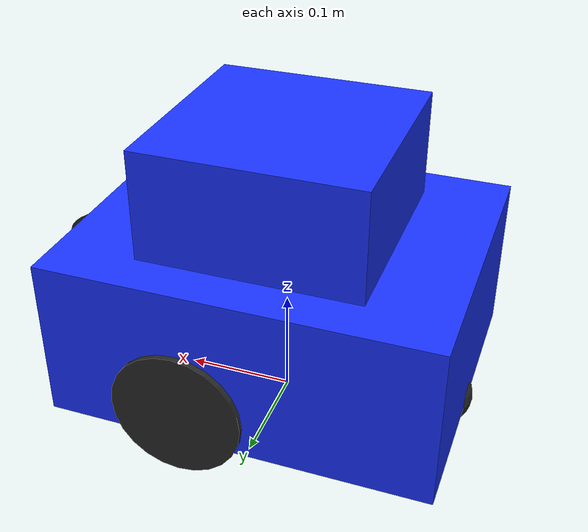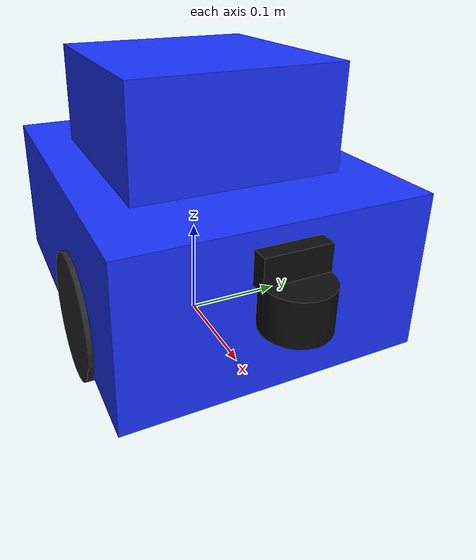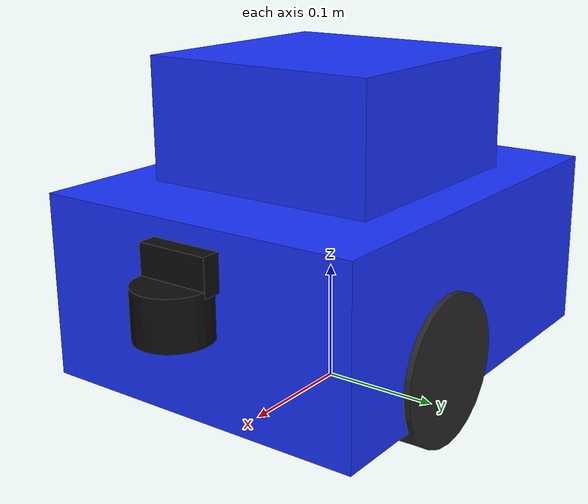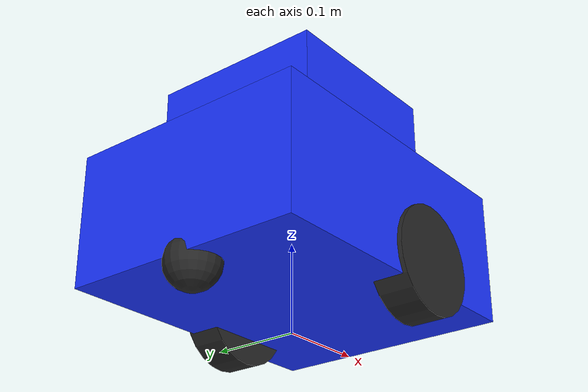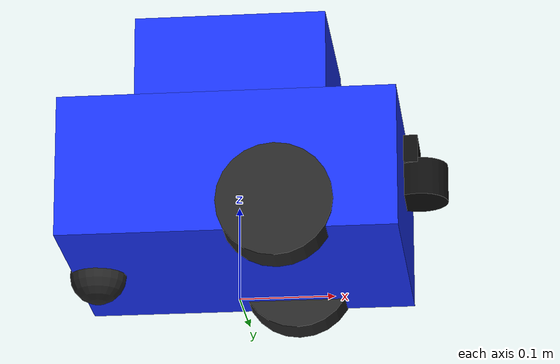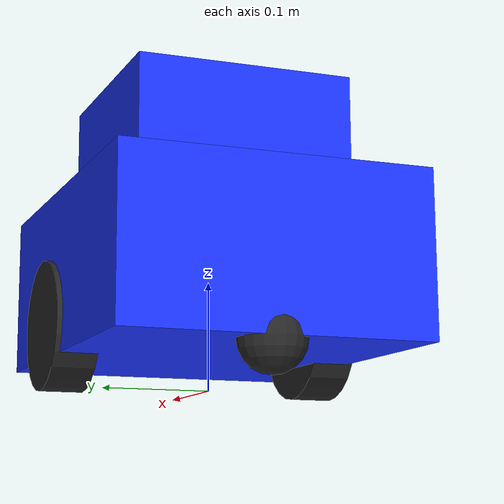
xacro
<?xml version="1.0"?>
<robot xmlns:xacro="http://www.ros.org/wiki/xacro" name="followbot">

  <xacro:arg name="prefix"           default=""/>
  <xacro:arg name="namespace"        default=""/>
  <xacro:arg name="color"            default="0.1 0.2 1.0 1.0"/>
  <xacro:arg name="controllers_file" default=""/>
  <xacro:arg name="camera_topic"     default="camera/image_raw"/>
  <xacro:arg name="lidar_topic"      default="scan"/>
  <!-- 学習データ生成では Leader を「見た目だけ」spawn する。
       センサと ros2_control を外して軽くするが、形状・色は同一に保つ。
       デモで見るのと違う外観を学習させては意味がないため (spec §25)。 -->
  <xacro:arg name="with_sensors"     default="true"/>
  <xacro:arg name="with_control"     default="true"/>
  <!-- 学習データ生成では Leader を静的モデルにする。
       teleport を繰り返すと動的モデルには速度が残り、姿勢が揺れるため。 -->
  <xacro:arg name="static_model"     default="false"/>

  <xacro:property name="prefix"    value="$(arg prefix)"/>
  <xacro:property name="with_sensors" value="$(arg with_sensors)"/>
  <xacro:property name="with_control" value="$(arg with_control)"/>
  <xacro:property name="static_model" value="$(arg static_model)"/>
  <xacro:property name="ns"        value="$(arg namespace)"/>
  <xacro:property name="color"     value="$(arg color)"/>

  <!-- 寸法 -->
  <xacro:property name="body_x"      value="0.35"/>
  <xacro:property name="body_y"      value="0.28"/>
  <xacro:property name="body_z"      value="0.15"/>
  <xacro:property name="wheel_r"     value="0.06"/>
  <xacro:property name="wheel_w"     value="0.04"/>
  <xacro:property name="wheel_sep"   value="0.25"/>
  <xacro:property name="caster_r"    value="0.03"/>
  <xacro:property name="body_z_off"  value="0.045"/>   <!-- base_link からの車体中心オフセット -->
  <!-- 接地は 3 点 (車輪 2 + 後部キャスタ 1) とする。
       4 点接地かつ重心が車輪軸上にあると車輪に荷重が乗らず空転する
       (実測: 指令 0.3 m/s に対し実移動 0.07 m/s)。詳細は DEVLOG P-2。
       車輪を車体中心より前に出し、重心 (x=0) を車輪とキャスタの間に置くことで
       車輪が荷重の約 75% を受ける。 -->
  <xacro:property name="wheel_x"     value="0.05"/>
  <xacro:property name="caster_x"    value="-0.15"/>
  <xacro:property name="lidar_z"     value="0.06"/>    <!-- base_link 基準 -> 地上高 0.12 m -->
  <xacro:property name="lidar_x"     value="0.19"/>    <!-- 車体前面より前 : 自己遮蔽を避ける -->
  <xacro:property name="cam_x"       value="0.175"/>
  <xacro:property name="cam_z"       value="0.09"/>    <!-- 地上高 0.15 m -->
  <xacro:property name="body_mass"   value="6.0"/>
  <xacro:property name="wheel_mass"  value="0.4"/>

  <xacro:macro name="box_inertia" params="m x y z oz:=0">
    <inertial>
      <origin xyz="0 0 ${oz}"/>
      <mass value="${m}"/>
      <inertia ixx="${m*(y*y+z*z)/12.0}" ixy="0" ixz="0"
               iyy="${m*(x*x+z*z)/12.0}" iyz="0"
               izz="${m*(x*x+y*y)/12.0}"/>
    </inertial>
  </xacro:macro>

  <xacro:macro name="cylinder_inertia" params="m r h">
    <inertial>
      <mass value="${m}"/>
      <inertia ixx="${m*(3*r*r+h*h)/12.0}" ixy="0" ixz="0"
               iyy="${m*(3*r*r+h*h)/12.0}" iyz="0"
               izz="${m*r*r/2.0}"/>
    </inertial>
  </xacro:macro>

  <!-- ===================== links ===================== -->

  <link name="${prefix}base_footprint"/>

  <link name="${prefix}base_link">
    <xacro:box_inertia m="${body_mass}" x="${body_x}" y="${body_y}" z="${body_z}"
                       oz="${body_z_off}"/>
    <visual>
      <origin xyz="0 0 ${body_z_off}"/>
      <geometry><box size="${body_x} ${body_y} ${body_z}"/></geometry>
      <material name="${prefix}body_color"><color rgba="${color}"/></material>
    </visual>
    <collision>
      <origin xyz="0 0 ${body_z_off}"/>
      <geometry><box size="${body_x} ${body_y} ${body_z}"/></geometry>
    </collision>
  </link>

  <joint name="base_footprint_joint" type="fixed">
    <parent link="${prefix}base_footprint"/>
    <child  link="${prefix}base_link"/>
    <origin xyz="0 0 ${wheel_r}"/>
  </joint>

  <!-- 認識用マーカー : 天面 (地上高 0.18〜0.28 m) -->
  <link name="${prefix}marker_link">
    <xacro:box_inertia m="0.3" x="0.20" y="0.20" z="0.10"/>
    <visual>
      <geometry><box size="0.20 0.20 0.10"/></geometry>
      <material name="${prefix}marker_color"><color rgba="${color}"/></material>
    </visual>
    <collision>
      <geometry><box size="0.20 0.20 0.10"/></geometry>
    </collision>
  </link>
  <joint name="marker_joint" type="fixed">
    <parent link="${prefix}base_link"/>
    <child  link="${prefix}marker_link"/>
    <origin xyz="0 0 ${body_z_off + body_z/2 + 0.05}"/>
  </joint>

  <xacro:macro name="wheel" params="side reflect">
    <link name="${prefix}${side}_wheel_link">
      <xacro:cylinder_inertia m="${wheel_mass}" r="${wheel_r}" h="${wheel_w}"/>
      <visual>
        <origin rpy="${pi/2} 0 0"/>
        <geometry><cylinder radius="${wheel_r}" length="${wheel_w}"/></geometry>
        <material name="wheel_color"><color rgba="0.15 0.15 0.15 1.0"/></material>
      </visual>
      <collision>
        <origin rpy="${pi/2} 0 0"/>
        <geometry><cylinder radius="${wheel_r}" length="${wheel_w}"/></geometry>
      </collision>
    </link>
    <joint name="${side}_wheel_joint" type="continuous">
      <parent link="${prefix}base_link"/>
      <child  link="${prefix}${side}_wheel_link"/>
      <origin xyz="${wheel_x} ${reflect * wheel_sep / 2} 0"/>
      <axis xyz="0 1 0"/>
      <dynamics damping="0.02" friction="0.0"/>
    </joint>
  </xacro:macro>

  <xacro:wheel side="left"  reflect="1"/>
  <xacro:wheel side="right" reflect="-1"/>

  <!-- キャスタは前後 2 個にする。
       車輪 (x=0) と後部キャスタ (x=-0.13) だけでは前方に支持点が無く、
       車体が前のめりに倒れて前端下縁で静止する (実測 pitch 10.02 deg)。
       LiDAR 走査面も 10 deg 傾くため、Camera+LiDAR 融合が成立しなくなる。
       詳細は DEVLOG P-1。 -->
  <xacro:macro name="caster" params="name x">
    <link name="${prefix}${name}">
      <xacro:cylinder_inertia m="0.1" r="${caster_r}" h="${caster_r}"/>
      <visual>
        <geometry><sphere radius="${caster_r}"/></geometry>
        <material name="wheel_color"><color rgba="0.15 0.15 0.15 1.0"/></material>
      </visual>
      <collision>
        <geometry><sphere radius="${caster_r}"/></geometry>
      </collision>
    </link>
    <joint name="${name}_joint" type="fixed">
      <parent link="${prefix}base_link"/>
      <child  link="${prefix}${name}"/>
      <origin xyz="${x} 0 ${caster_r - wheel_r}"/>
    </joint>
  </xacro:macro>

  <!-- spec §8 が要求する caster_link は後部キャスタ 1 個のみ -->
  <xacro:caster name="caster_link" x="${caster_x}"/>

  <link name="${prefix}camera_link">
    <xacro:box_inertia m="0.05" x="0.03" y="0.06" z="0.03"/>
    <visual>
      <geometry><box size="0.03 0.06 0.03"/></geometry>
      <material name="sensor_color"><color rgba="0.05 0.05 0.05 1.0"/></material>
    </visual>
  </link>
  <joint name="camera_joint" type="fixed">
    <parent link="${prefix}base_link"/>
    <child  link="${prefix}camera_link"/>
    <origin xyz="${cam_x} 0 ${cam_z}"/>
  </joint>

  <!-- 光学規約 (REP-103): z 前方 / x 右 / y 下 -->
  <link name="${prefix}camera_optical_frame"/>
  <joint name="camera_optical_joint" type="fixed">
    <parent link="${prefix}camera_link"/>
    <child  link="${prefix}camera_optical_frame"/>
    <origin rpy="${-pi/2} 0 ${-pi/2}"/>
  </joint>

  <link name="${prefix}lidar_link">
    <xacro:cylinder_inertia m="0.1" r="0.03" h="0.04"/>
    <visual>
      <geometry><cylinder radius="0.03" length="0.04"/></geometry>
      <material name="sensor_color"><color rgba="0.05 0.05 0.05 1.0"/></material>
    </visual>
  </link>
  <joint name="lidar_joint" type="fixed">
    <parent link="${prefix}base_link"/>
    <child  link="${prefix}lidar_link"/>
    <origin xyz="${lidar_x} 0 ${lidar_z}"/>
  </joint>

  <!-- ===================== ros2_control (spec §9) ===================== -->

  <xacro:if value="${with_control}">
  <ros2_control name="FollowBotSystem" type="system">
    <hardware>
      <plugin>gz_ros2_control/GazeboSimSystem</plugin>
    </hardware>
    <joint name="left_wheel_joint">
      <command_interface name="velocity">
        <param name="min">-15.0</param>
        <param name="max">15.0</param>
      </command_interface>
      <state_interface name="position"/>
      <state_interface name="velocity"/>
    </joint>
    <joint name="right_wheel_joint">
      <command_interface name="velocity">
        <param name="min">-15.0</param>
        <param name="max">15.0</param>
      </command_interface>
      <state_interface name="position"/>
      <state_interface name="velocity"/>
    </joint>
  </ros2_control>
  </xacro:if>

  <!-- ===================== Gazebo ===================== -->

  <xacro:if value="${static_model}">
    <gazebo>
      <static>true</static>
    </gazebo>
  </xacro:if>

  <gazebo reference="${prefix}base_link">
    <material>
      <ambient>${color}</ambient>
      <diffuse>${color}</diffuse>
    </material>
    <mu1>0.2</mu1><mu2>0.2</mu2>
  </gazebo>

  <gazebo reference="${prefix}marker_link">
    <material>
      <ambient>${color}</ambient>
      <diffuse>${color}</diffuse>
    </material>
  </gazebo>

  <xacro:macro name="wheel_gazebo" params="side">
    <gazebo reference="${prefix}${side}_wheel_link">
      <mu1>1.5</mu1><mu2>1.5</mu2>
      <kp>1e7</kp><kd>10.0</kd>
      <surface>
        <friction>
          <ode><mu>1.5</mu><mu2>1.5</mu2></ode>
        </friction>
      </surface>
    </gazebo>
  </xacro:macro>
  <xacro:wheel_gazebo side="left"/>
  <xacro:wheel_gazebo side="right"/>

  <xacro:macro name="caster_gazebo" params="name">
    <gazebo reference="${prefix}${name}">
      <mu1>0.0</mu1><mu2>0.0</mu2>
      <surface>
        <friction>
          <ode><mu>0.0</mu><mu2>0.0</mu2></ode>
        </friction>
      </surface>
    </gazebo>
  </xacro:macro>
  <xacro:caster_gazebo name="caster_link"/>

  <xacro:if value="${with_sensors}">
  <!-- RGB Camera (spec §13): 320x240 / 10 Hz / FOV 約100deg -->
  <gazebo reference="${prefix}camera_link">
    <sensor name="camera" type="camera">
      <topic>${ns}/$(arg camera_topic)</topic>
      <camera_info_topic>${ns}/$(arg camera_topic)/camera_info</camera_info_topic>
      <gz_frame_id>${prefix}camera_optical_frame</gz_frame_id>
      <update_rate>10</update_rate>
      <always_on>1</always_on>
      <camera>
        <horizontal_fov>1.745</horizontal_fov>
        <image><width>320</width><height>240</height><format>R8G8B8</format></image>
        <clip><near>0.05</near><far>20.0</far></clip>
        <optical_frame_id>${prefix}camera_optical_frame</optical_frame_id>
      </camera>
    </sensor>
  </gazebo>

  <!-- 2D LiDAR (spec §13): 360 samples / 10 Hz / 0.1-8 m / 360deg -->
  <gazebo reference="${prefix}lidar_link">
    <sensor name="lidar" type="gpu_lidar">
      <topic>${ns}/$(arg lidar_topic)</topic>
      <gz_frame_id>${prefix}lidar_link</gz_frame_id>
      <update_rate>10</update_rate>
      <always_on>1</always_on>
      <lidar>
        <scan>
          <horizontal>
            <samples>360</samples>
            <resolution>1</resolution>
            <min_angle>-3.14159</min_angle>
            <max_angle>3.14159</max_angle>
          </horizontal>
        </scan>
        <range><min>0.10</min><max>8.0</max><resolution>0.01</resolution></range>
        <noise><type>gaussian</type><mean>0.0</mean><stddev>0.005</stddev></noise>
      </lidar>
    </sensor>
  </gazebo>
  </xacro:if>

  <gazebo>
    <plugin filename="gz-sim-pose-publisher-system" name="gz::sim::systems::PosePublisher">
      <publish_link_pose>false</publish_link_pose>
      <publish_collision_pose>false</publish_collision_pose>
      <publish_visual_pose>false</publish_visual_pose>
      <publish_sensor_pose>false</publish_sensor_pose>
      <publish_nested_model_pose>false</publish_nested_model_pose>
      <publish_model_pose>true</publish_model_pose>
      <use_pose_vector_msg>false</use_pose_vector_msg>
      <update_frequency>20</update_frequency>
    </plugin>
  </gazebo>

  <!-- gz_ros2_control (spec §9): Gazebo DiffDrive プラグインは使用しない -->
  <xacro:if value="${with_control}">
  <gazebo>
    <plugin filename="gz_ros2_control-system" name="gz_ros2_control::GazeboSimROS2ControlPlugin">
      <parameters>$(arg controllers_file)</parameters>
      <ros>
        <namespace>${ns}</namespace>
      </ros>
    </plugin>
  </gazebo>
  </xacro:if>

</robot>
